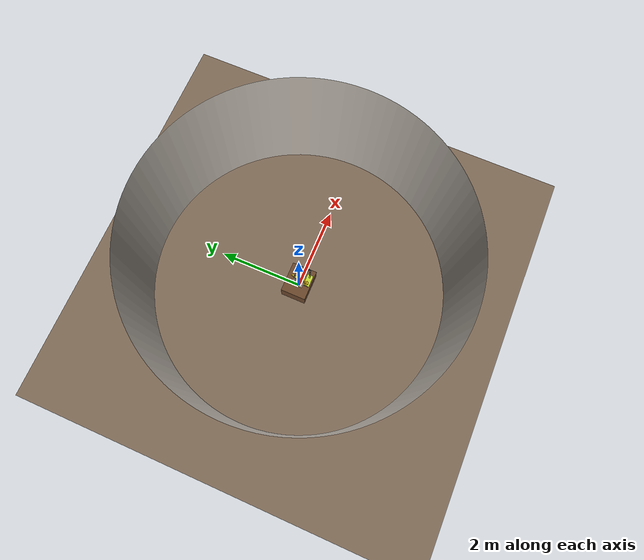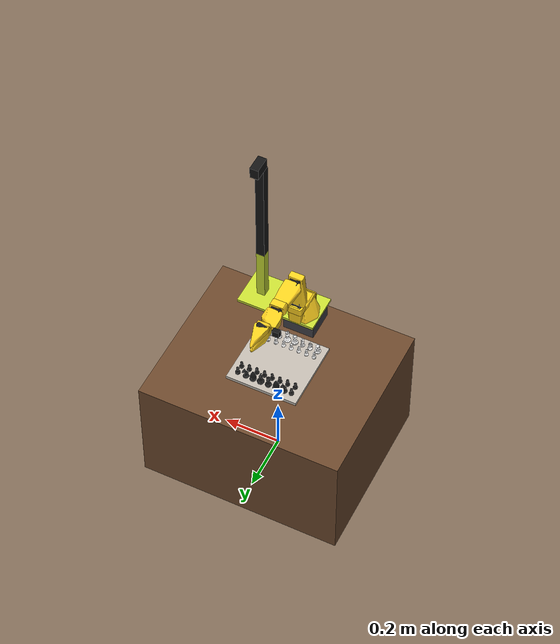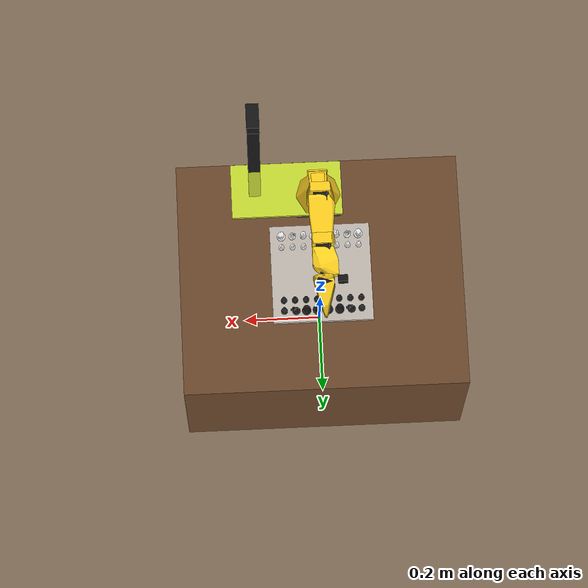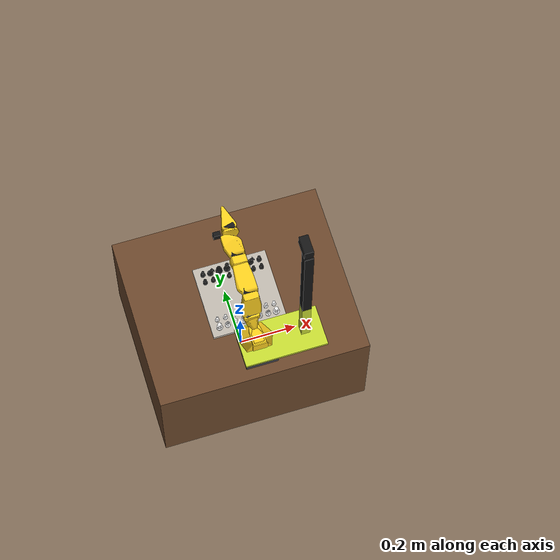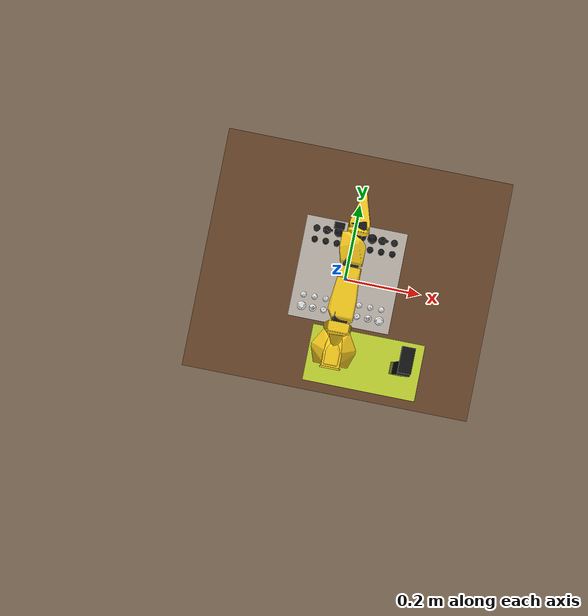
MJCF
<mujoco model="chess_so101">
  <compiler angle="radian" meshdir="/home/kamil/chess_so101/chess_sim/assets/" texturedir="/home/kamil/chess_so101/chess_sim/assets/"/>

  <option impratio="10" cone="elliptic"/>

  <size nkey="1"/>

  <statistic extent="1"/>

  <visual>
    <global offwidth="1280" offheight="960"/>
    <map znear="0.004"/>
  </visual>

  <default>
    <default class="so101:main">
      <default class="so101:so101_new_calib">
        <joint armature="0.005" damping="1" frictionloss="0.1"/>
        <general biastype="affine" gainprm="50" biasprm="0 -50"/>
        <default class="so101:visual">
          <geom type="mesh" contype="0" conaffinity="0" group="2"/>
        </default>
        <default class="so101:collision">
          <geom group="3"/>
        </default>
      </default>
      <default class="so101:sts3215">
        <joint armature="0.028" damping="0.6" frictionloss="0.052"/>
        <geom contype="0" conaffinity="0"/>
        <general forcerange="-2.94 2.94" biastype="affine" gainprm="998.22" biasprm="0 -998.22 -2.731"/>
      </default>
      <default class="so101:backlash">
        <joint range="-0.00872665 0.00872665" armature="0.01" damping="0.01" limited="true"/>
      </default>
    </default>
  </default>

  <asset>
    <texture type="2d" colorspace="linear" name="backdrop_tex" file="scene/pano_image.png"/>
    <texture type="2d" colorspace="linear" name="board_tex" file="scene/board_texture.png"/>
    <texture type="2d" colorspace="linear" name="tex_white_pawn" file="pieces/white_pawn/material_0.png"/>
    <texture type="2d" colorspace="linear" name="tex_white_rook" file="pieces/white_rook/material_0.png"/>
    <texture type="2d" colorspace="linear" name="tex_white_knight" file="pieces/white_knight/material_0.png"/>
    <texture type="2d" colorspace="linear" name="tex_white_bishop" file="pieces/white_bishop/material_0.png"/>
    <texture type="2d" colorspace="linear" name="tex_white_queen" file="pieces/white_queen/material_0.png"/>
    <texture type="2d" colorspace="linear" name="tex_white_king" file="pieces/white_king/material_0.png"/>
    <texture type="2d" colorspace="linear" name="tex_black_pawn" file="pieces/black_pawn/material_0.png"/>
    <texture type="2d" colorspace="linear" name="tex_black_rook" file="pieces/black_rook/material_0.png"/>
    <texture type="2d" colorspace="linear" name="tex_black_knight" file="pieces/black_knight/material_0.png"/>
    <texture type="2d" colorspace="linear" name="tex_black_bishop" file="pieces/black_bishop/material_0.png"/>
    <texture type="2d" colorspace="linear" name="tex_black_queen" file="pieces/black_queen/material_0.png"/>
    <texture type="2d" colorspace="linear" name="tex_black_king" file="pieces/black_king/material_0.png"/>
    <material name="backdrop_mat" texture="backdrop_tex" emission="0.55"/>
    <material name="board_mat" texture="board_tex" reflectance="0.04"/>
    <material name="mat_white_pawn" texture="tex_white_pawn" reflectance="0.2"/>
    <material name="mat_white_rook" texture="tex_white_rook" reflectance="0.2"/>
    <material name="mat_white_knight" texture="tex_white_knight" reflectance="0.2"/>
    <material name="mat_white_bishop" texture="tex_white_bishop" reflectance="0.2"/>
    <material name="mat_white_queen" texture="tex_white_queen" reflectance="0.2"/>
    <material name="mat_white_king" texture="tex_white_king" reflectance="0.2"/>
    <material name="mat_black_pawn" texture="tex_black_pawn" reflectance="0.2"/>
    <material name="mat_black_rook" texture="tex_black_rook" reflectance="0.2"/>
    <material name="mat_black_knight" texture="tex_black_knight" reflectance="0.2"/>
    <material name="mat_black_bishop" texture="tex_black_bishop" reflectance="0.2"/>
    <material name="mat_black_queen" texture="tex_black_queen" reflectance="0.2"/>
    <material name="mat_black_king" texture="tex_black_king" reflectance="0.2"/>
    <material name="so101:base_motor_holder_so101_v1_material" rgba="1 0.82 0.12 1"/>
    <material name="so101:base_so101_v2_material" rgba="1 0.82 0.12 1"/>
    <material name="so101:sts3215_03a_v1_material" rgba="0.1 0.1 0.1 1"/>
    <material name="so101:waveshare_mounting_plate_so101_v2_material" rgba="1 0.82 0.12 1"/>
    <material name="so101:motor_holder_so101_base_v1_material" rgba="1 0.82 0.12 1"/>
    <material name="so101:rotation_pitch_so101_v1_material" rgba="1 0.82 0.12 1"/>
    <material name="so101:upper_arm_so101_v1_material" rgba="1 0.82 0.12 1"/>
    <material name="so101:under_arm_so101_v1_material" rgba="1 0.82 0.12 1"/>
    <material name="so101:motor_holder_so101_wrist_v1_material" rgba="1 0.82 0.12 1"/>
    <material name="so101:sts3215_03a_no_horn_v1_material" rgba="0.1 0.1 0.1 1"/>
    <material name="so101:wrist_roll_pitch_so101_v2_material" rgba="1 0.82 0.12 1"/>
    <material name="so101:wrist_roll_follower_so101_v1_material" rgba="1 0.82 0.12 1"/>
    <material name="so101:moving_jaw_so101_v1_material" rgba="1 0.82 0.12 1"/>
    <mesh name="backdrop" file="scene/pano_cylinder.obj"/>
    <mesh name="mesh_white_pawn" file="pieces/white_pawn/white_pawn.obj" scale="0.34 0.34 0.34"/>
    <mesh name="mesh_white_rook" file="pieces/white_rook/white_rook.obj" scale="0.467692 0.467692 0.467692"/>
    <mesh name="mesh_white_knight" file="pieces/white_knight/white_knight.obj" scale="0.373333 0.373333 0.373333"/>
    <mesh name="mesh_white_bishop" file="pieces/white_bishop/white_bishop.obj" scale="0.490667 0.490667 0.490667"/>
    <mesh name="mesh_white_queen" file="pieces/white_queen/white_queen.obj" scale="0.489412 0.489412 0.489412"/>
    <mesh name="mesh_white_king" file="pieces/white_king/white_king.obj" scale="0.488421 0.488421 0.488421"/>
    <mesh name="mesh_black_pawn" file="pieces/black_pawn/black_pawn.obj" scale="0.453333 0.453333 0.453333"/>
    <mesh name="mesh_black_rook" file="pieces/black_rook/black_rook.obj" scale="0.43428 0.43428 0.43428"/>
    <mesh name="mesh_black_knight" file="pieces/black_knight/black_knight.obj" scale="0.399643 0.399643 0.399643"/>
    <mesh name="mesh_black_bishop" file="pieces/black_bishop/black_bishop.obj" scale="0.490667 0.490667 0.490667"/>
    <mesh name="mesh_black_queen" file="pieces/black_queen/black_queen.obj" scale="0.489412 0.489412 0.489412"/>
    <mesh name="mesh_black_king" file="pieces/black_king/black_king.obj" scale="0.445674 0.445674 0.445674"/>
    <mesh name="so101:waveshare_mounting_plate_so101_v2" file="so101/waveshare_mounting_plate_so101_v2.stl"/>
    <mesh name="so101:sts3215_03a_v1" file="so101/sts3215_03a_v1.stl"/>
    <mesh name="so101:motor_holder_so101_base_v1" file="so101/motor_holder_so101_base_v1.stl"/>
    <mesh name="so101:wrist_roll_follower_so101_v1" file="so101/wrist_roll_follower_so101_v1.stl"/>
    <mesh name="so101:moving_jaw_so101_v1" file="so101/moving_jaw_so101_v1.stl"/>
    <mesh name="so101:base_motor_holder_so101_v1" file="so101/base_motor_holder_so101_v1.stl"/>
    <mesh name="so101:upper_arm_so101_v1" file="so101/upper_arm_so101_v1.stl"/>
    <mesh name="so101:wrist_roll_pitch_so101_v2" file="so101/wrist_roll_pitch_so101_v2.stl"/>
    <mesh name="so101:under_arm_so101_v1" file="so101/under_arm_so101_v1.stl"/>
    <mesh name="so101:rotation_pitch_so101_v1" file="so101/rotation_pitch_so101_v1.stl"/>
    <mesh name="so101:motor_holder_so101_wrist_v1" file="so101/motor_holder_so101_wrist_v1.stl"/>
    <mesh name="so101:sts3215_03a_no_horn_v1" file="so101/sts3215_03a_no_horn_v1.stl"/>
    <mesh name="so101:base_so101_v2" file="so101/base_so101_v2.stl"/>
  </asset>

  <worldbody>
    <geom size="6 6 0.1" type="plane" rgba="0.5 0.42 0.34 1"/>
    <geom type="mesh" contype="0" conaffinity="0" group="1" material="backdrop_mat" mesh="backdrop"/>
    <geom name="table" size="0.36 0.3 0.215" pos="0 0 0.215" type="box" priority="1" solimp="0.999 0.9999" rgba="0.42 0.28 0.17 1"/>
    <geom size="0.055 0.055 0.03" pos="0 -0.207 0.46" type="box" rgba="0.25 0.25 0.28 1"/>
    <geom name="mast_plate" size="0.14 0.07 0.005" pos="0.08 -0.207 0.495" type="box" rgba="0.78 0.86 0.2 1"/>
    <geom name="mast_lower" size="0.015 0.015 0.1" pos="0.16 -0.207 0.6" type="box" rgba="0.78 0.86 0.2 1"/>
    <geom name="mast_upper" size="0.015 0.015 0.2" pos="0.16 -0.207 0.9" type="box" rgba="0.08 0.08 0.08 1"/>
    <geom name="mast_camera" size="0.015 0.03 0.02" pos="0.16 -0.187 1.12" type="box" contype="0" conaffinity="0" rgba="0.08 0.08 0.08 1"/>
    <camera name="external" quat="0.756283 0.423207 -0.243643 -0.435397" pos="-0.31 -0.16 0.702" fovy="42"/>
    <camera name="top" quat="0.987569 0.106489 0.114949 -0.0123948" pos="0.16 -0.152 1.12" fovy="24"/>
    <light name="key" pos="0.662814 -0.662814 2.60938" dir="-0.276172 0.276172 -0.920575" diffuse="0.85 0.82 0.75"/>
    <light name="fill" castshadow="false" pos="-1.2 1 1.8" dir="0.421076 -0.336861 -0.842152" diffuse="0.35 0.36 0.4"/>
    <body name="board" pos="0 0 0.436" mocap="true">
      <geom name="board" size="0.127 0.127 0.006" type="box" priority="1" solimp="0.999 0.9999" material="board_mat"/>
    </body>
    <body name="white_pawn1" pos="0.0979897 -0.069999 0.455597" quat="1 6.0272e-06 4.17635e-05 0.000115634">
      <joint name="white_pawn1_joint" type="free"/>
      <geom type="mesh" contype="0" conaffinity="0" density="0" material="mat_white_pawn" mesh="mesh_white_pawn"/>
      <geom size="0.00655407 0.0034" pos="1.054e-05 -2.72e-06 -0.010198" type="cylinder" rgba="1 1 1 0" density="600"/>
      <geom size="0.00331241 0.00272" pos="1.054e-05 -2.72e-06 -0.00407796" type="cylinder" rgba="1 1 1 0" density="600"/>
      <geom size="0.00268728 0.00272" pos="1.054e-05 -2.72e-06 0.00136204" type="cylinder" rgba="1 1 1 0" density="600"/>
      <geom size="0.0041608 0.00476" pos="1.054e-05 -2.72e-06 0.00884204" type="cylinder" rgba="1 1 1 0" density="600"/>
    </body>
    <body name="white_pawn2" pos="0.0699901 -0.0699998 0.455597" quat="1 4.02693e-05 1.38624e-07 -7.1423e-06">
      <joint name="white_pawn2_joint" type="free"/>
      <geom type="mesh" contype="0" conaffinity="0" density="0" material="mat_white_pawn" mesh="mesh_white_pawn"/>
      <geom size="0.00655407 0.0034" pos="1.054e-05 -2.72e-06 -0.010198" type="cylinder" rgba="1 1 1 0" density="600"/>
      <geom size="0.00331241 0.00272" pos="1.054e-05 -2.72e-06 -0.00407796" type="cylinder" rgba="1 1 1 0" density="600"/>
      <geom size="0.00268728 0.00272" pos="1.054e-05 -2.72e-06 0.00136204" type="cylinder" rgba="1 1 1 0" density="600"/>
      <geom size="0.0041608 0.00476" pos="1.054e-05 -2.72e-06 0.00884204" type="cylinder" rgba="1 1 1 0" density="600"/>
    </body>
    <body name="white_pawn3" pos="0.0419902 -0.0699985 0.455597" quat="1 4.61688e-05 1.05559e-06 -4.47535e-06">
      <joint name="white_pawn3_joint" type="free"/>
      <geom type="mesh" contype="0" conaffinity="0" density="0" material="mat_white_pawn" mesh="mesh_white_pawn"/>
      <geom size="0.00655407 0.0034" pos="1.054e-05 -2.72e-06 -0.010198" type="cylinder" rgba="1 1 1 0" density="600"/>
      <geom size="0.00331241 0.00272" pos="1.054e-05 -2.72e-06 -0.00407796" type="cylinder" rgba="1 1 1 0" density="600"/>
      <geom size="0.00268728 0.00272" pos="1.054e-05 -2.72e-06 0.00136204" type="cylinder" rgba="1 1 1 0" density="600"/>
      <geom size="0.0041608 0.00476" pos="1.054e-05 -2.72e-06 0.00884204" type="cylinder" rgba="1 1 1 0" density="600"/>
    </body>
    <body name="white_pawn4" pos="0.0139904 -0.0699986 0.455597" quat="1 2.13489e-05 -3.6e-05 -0.000159143">
      <joint name="white_pawn4_joint" type="free"/>
      <geom type="mesh" contype="0" conaffinity="0" density="0" material="mat_white_pawn" mesh="mesh_white_pawn"/>
      <geom size="0.00655407 0.0034" pos="1.054e-05 -2.72e-06 -0.010198" type="cylinder" rgba="1 1 1 0" density="600"/>
      <geom size="0.00331241 0.00272" pos="1.054e-05 -2.72e-06 -0.00407796" type="cylinder" rgba="1 1 1 0" density="600"/>
      <geom size="0.00268728 0.00272" pos="1.054e-05 -2.72e-06 0.00136204" type="cylinder" rgba="1 1 1 0" density="600"/>
      <geom size="0.0041608 0.00476" pos="1.054e-05 -2.72e-06 0.00884204" type="cylinder" rgba="1 1 1 0" density="600"/>
    </body>
    <body name="white_pawn5" pos="-0.0140083 -0.07 0.455597" quat="1 4.06485e-05 1.22554e-05 0.000192693">
      <joint name="white_pawn5_joint" type="free"/>
      <geom type="mesh" contype="0" conaffinity="0" density="0" material="mat_white_pawn" mesh="mesh_white_pawn"/>
      <geom size="0.00655407 0.0034" pos="1.054e-05 -2.72e-06 -0.010198" type="cylinder" rgba="1 1 1 0" density="600"/>
      <geom size="0.00331241 0.00272" pos="1.054e-05 -2.72e-06 -0.00407796" type="cylinder" rgba="1 1 1 0" density="600"/>
      <geom size="0.00268728 0.00272" pos="1.054e-05 -2.72e-06 0.00136204" type="cylinder" rgba="1 1 1 0" density="600"/>
      <geom size="0.0041608 0.00476" pos="1.054e-05 -2.72e-06 0.00884204" type="cylinder" rgba="1 1 1 0" density="600"/>
    </body>
    <body name="white_pawn6" pos="-0.0420099 -0.069998 0.455597" quat="1 4.44292e-05 5.53182e-06 4.42612e-05">
      <joint name="white_pawn6_joint" type="free"/>
      <geom type="mesh" contype="0" conaffinity="0" density="0" material="mat_white_pawn" mesh="mesh_white_pawn"/>
      <geom size="0.00655407 0.0034" pos="1.054e-05 -2.72e-06 -0.010198" type="cylinder" rgba="1 1 1 0" density="600"/>
      <geom size="0.00331241 0.00272" pos="1.054e-05 -2.72e-06 -0.00407796" type="cylinder" rgba="1 1 1 0" density="600"/>
      <geom size="0.00268728 0.00272" pos="1.054e-05 -2.72e-06 0.00136204" type="cylinder" rgba="1 1 1 0" density="600"/>
      <geom size="0.0041608 0.00476" pos="1.054e-05 -2.72e-06 0.00884204" type="cylinder" rgba="1 1 1 0" density="600"/>
    </body>
    <body name="white_pawn7" pos="-0.0700111 -0.0699991 0.455597" quat="1 2.95983e-05 -2.84155e-05 4.29816e-05">
      <joint name="white_pawn7_joint" type="free"/>
      <geom type="mesh" contype="0" conaffinity="0" density="0" material="mat_white_pawn" mesh="mesh_white_pawn"/>
      <geom size="0.00655407 0.0034" pos="1.054e-05 -2.72e-06 -0.010198" type="cylinder" rgba="1 1 1 0" density="600"/>
      <geom size="0.00331241 0.00272" pos="1.054e-05 -2.72e-06 -0.00407796" type="cylinder" rgba="1 1 1 0" density="600"/>
      <geom size="0.00268728 0.00272" pos="1.054e-05 -2.72e-06 0.00136204" type="cylinder" rgba="1 1 1 0" density="600"/>
      <geom size="0.0041608 0.00476" pos="1.054e-05 -2.72e-06 0.00884204" type="cylinder" rgba="1 1 1 0" density="600"/>
    </body>
    <body name="white_pawn8" pos="-0.0980117 -0.0699987 0.455597" quat="1 1.35788e-05 -3.98804e-05 0.000247196">
      <joint name="white_pawn8_joint" type="free"/>
      <geom type="mesh" contype="0" conaffinity="0" density="0" material="mat_white_pawn" mesh="mesh_white_pawn"/>
      <geom size="0.00655407 0.0034" pos="1.054e-05 -2.72e-06 -0.010198" type="cylinder" rgba="1 1 1 0" density="600"/>
      <geom size="0.00331241 0.00272" pos="1.054e-05 -2.72e-06 -0.00407796" type="cylinder" rgba="1 1 1 0" density="600"/>
      <geom size="0.00268728 0.00272" pos="1.054e-05 -2.72e-06 0.00136204" type="cylinder" rgba="1 1 1 0" density="600"/>
      <geom size="0.0041608 0.00476" pos="1.054e-05 -2.72e-06 0.00884204" type="cylinder" rgba="1 1 1 0" density="600"/>
    </body>
    <body name="white_rook1" pos="0.0979897 -0.0980045 0.457197" quat="1 1.97907e-05 1.42414e-05 0.000152861">
      <joint name="white_rook1_joint" type="free"/>
      <geom type="mesh" contype="0" conaffinity="0" density="0" material="mat_white_rook" mesh="mesh_white_rook"/>
      <geom size="0.0109506 0.0038" pos="1.14585e-05 4.91077e-06 -0.0113981" type="cylinder" rgba="1 1 1 0" density="600"/>
      <geom size="0.00597772 0.00304" pos="1.14585e-05 4.91077e-06 -0.00455813" type="cylinder" rgba="1 1 1 0" density="600"/>
      <geom size="0.00503067 0.00304" pos="1.14585e-05 4.91077e-06 0.00152187" type="cylinder" rgba="1 1 1 0" density="600"/>
      <geom size="0.0050328 0.00532" pos="1.14585e-05 4.91077e-06 0.00988187" type="cylinder" rgba="1 1 1 0" density="600"/>
    </body>
    <body name="white_rook2" pos="-0.0980138 -0.098005 0.457197" quat="1 1.0582e-07 -2.47778e-05 -0.000103789">
      <joint name="white_rook2_joint" type="free"/>
      <geom type="mesh" contype="0" conaffinity="0" density="0" material="mat_white_rook" mesh="mesh_white_rook"/>
      <geom size="0.0109506 0.0038" pos="1.14585e-05 4.91077e-06 -0.0113981" type="cylinder" rgba="1 1 1 0" density="600"/>
      <geom size="0.00597772 0.00304" pos="1.14585e-05 4.91077e-06 -0.00455813" type="cylinder" rgba="1 1 1 0" density="600"/>
      <geom size="0.00503067 0.00304" pos="1.14585e-05 4.91077e-06 0.00152187" type="cylinder" rgba="1 1 1 0" density="600"/>
      <geom size="0.0050328 0.00532" pos="1.14585e-05 4.91077e-06 0.00988187" type="cylinder" rgba="1 1 1 0" density="600"/>
    </body>
    <body name="white_knight1" pos="0.0699975 -0.0980019 0.458793" quat="1 2.73677e-05 1.32339e-05 3.70885e-06">
      <joint name="white_knight1_joint" type="free"/>
      <geom type="mesh" contype="0" conaffinity="0" density="0" material="mat_white_knight" mesh="mesh_white_knight"/>
      <geom size="0.00908181 0.0042" pos="1.86667e-06 -7.46667e-07 -0.012594" type="cylinder" rgba="1 1 1 0" density="600"/>
      <geom size="0.00749604 0.00336" pos="1.86667e-06 -7.46667e-07 -0.00503403" type="cylinder" rgba="1 1 1 0" density="600"/>
      <geom size="0.00880836 0.00336" pos="1.86667e-06 -7.46667e-07 0.00168597" type="cylinder" rgba="1 1 1 0" density="600"/>
      <geom size="0.00656312 0.00588" pos="1.86667e-06 -7.46667e-07 0.010926" type="cylinder" rgba="1 1 1 0" density="600"/>
    </body>
    <body name="white_knight2" pos="-0.070002 -0.0980005 0.458793" quat="1 3.07533e-05 -4.1238e-06 -8.96461e-05">
      <joint name="white_knight2_joint" type="free"/>
      <geom type="mesh" contype="0" conaffinity="0" density="0" material="mat_white_knight" mesh="mesh_white_knight"/>
      <geom size="0.00908181 0.0042" pos="1.86667e-06 -7.46667e-07 -0.012594" type="cylinder" rgba="1 1 1 0" density="600"/>
      <geom size="0.00749604 0.00336" pos="1.86667e-06 -7.46667e-07 -0.00503403" type="cylinder" rgba="1 1 1 0" density="600"/>
      <geom size="0.00880836 0.00336" pos="1.86667e-06 -7.46667e-07 0.00168597" type="cylinder" rgba="1 1 1 0" density="600"/>
      <geom size="0.00656312 0.00588" pos="1.86667e-06 -7.46667e-07 0.010926" type="cylinder" rgba="1 1 1 0" density="600"/>
    </body>
    <body name="white_bishop1" pos="0.0420013 -0.0980056 0.460425" quat="1 4.54902e-05 4.11243e-07 -0.00011906">
      <joint name="white_bishop1_joint" type="free"/>
      <geom type="mesh" contype="0" conaffinity="0" density="0" material="mat_white_bishop" mesh="mesh_white_bishop"/>
      <geom size="0.00672351 0.0046" pos="1.472e-06 5.39733e-06 -0.0138255" type="cylinder" rgba="1 1 1 0" density="600"/>
      <geom size="0.00348178 0.00368" pos="1.472e-06 5.39733e-06 -0.00554551" type="cylinder" rgba="1 1 1 0" density="600"/>
      <geom size="0.00604877 0.00368" pos="1.472e-06 5.39733e-06 0.00181449" type="cylinder" rgba="1 1 1 0" density="600"/>
      <geom size="0.00490283 0.00644" pos="1.472e-06 5.39733e-06 0.0119345" type="cylinder" rgba="1 1 1 0" density="600"/>
    </body>
    <body name="white_bishop2" pos="-0.0420015 -0.098006 0.460425" quat="1 4.17647e-05 5.95879e-06 9.90555e-05">
      <joint name="white_bishop2_joint" type="free"/>
      <geom type="mesh" contype="0" conaffinity="0" density="0" material="mat_white_bishop" mesh="mesh_white_bishop"/>
      <geom size="0.00672351 0.0046" pos="1.472e-06 5.39733e-06 -0.0138255" type="cylinder" rgba="1 1 1 0" density="600"/>
      <geom size="0.00348178 0.00368" pos="1.472e-06 5.39733e-06 -0.00554551" type="cylinder" rgba="1 1 1 0" density="600"/>
      <geom size="0.00604877 0.00368" pos="1.472e-06 5.39733e-06 0.00181449" type="cylinder" rgba="1 1 1 0" density="600"/>
      <geom size="0.00490283 0.00644" pos="1.472e-06 5.39733e-06 0.0119345" type="cylinder" rgba="1 1 1 0" density="600"/>
    </body>
    <body name="white_queen1" pos="-0.0139955 -0.0980016 0.46281" quat="1 2.45652e-05 7.65559e-06 -2.07151e-05">
      <joint name="white_queen1_joint" type="free"/>
      <geom type="mesh" contype="0" conaffinity="0" density="0" material="mat_white_queen" mesh="mesh_white_queen"/>
      <geom size="0.0110518 0.0052" pos="-2.93647e-06 4.89412e-07 -0.0156113" type="cylinder" rgba="1 1 1 0" density="600"/>
      <geom size="0.00486131 0.00416" pos="-2.93647e-06 4.89412e-07 -0.00625126" type="cylinder" rgba="1 1 1 0" density="600"/>
      <geom size="0.00385311 0.00416" pos="-2.93647e-06 4.89412e-07 0.00206874" type="cylinder" rgba="1 1 1 0" density="600"/>
      <geom size="0.00635272 0.00728" pos="-2.93647e-06 4.89412e-07 0.0135087" type="cylinder" rgba="1 1 1 0" density="600"/>
    </body>
    <body name="white_king1" pos="0.0139985 -0.0980002 0.465204" quat="1 3.58546e-05 4.94169e-08 -0.000171113">
      <joint name="white_king1_joint" type="free"/>
      <geom type="mesh" contype="0" conaffinity="0" density="0" material="mat_white_king" mesh="mesh_white_king"/>
      <geom size="0.00866714 0.0058" pos="9.76842e-07 9.76842e-07 -0.0174049" type="cylinder" rgba="1 1 1 0" density="600"/>
      <geom size="0.00494222 0.00464" pos="9.76842e-07 9.76842e-07 -0.00696488" type="cylinder" rgba="1 1 1 0" density="600"/>
      <geom size="0.00385157 0.00464" pos="9.76842e-07 9.76842e-07 0.00231512" type="cylinder" rgba="1 1 1 0" density="600"/>
      <geom size="0.00631988 0.00812" pos="9.76842e-07 9.76842e-07 0.0150751" type="cylinder" rgba="1 1 1 0" density="600"/>
    </body>
    <body name="black_pawn1" pos="0.0979973 0.0700001 0.455606" quat="1 -1.33651e-05 3.0034e-05 7.73162e-05">
      <joint name="black_pawn1_joint" type="free"/>
      <geom type="mesh" contype="0" conaffinity="0" density="0" material="mat_black_pawn" mesh="mesh_black_pawn"/>
      <geom size="0.0083453 0.0034" pos="2.04e-06 -4.53333e-07 -0.0102068" type="cylinder" rgba="1 1 1 0" density="600"/>
      <geom size="0.0045886 0.00272" pos="2.04e-06 -4.53333e-07 -0.0040868" type="cylinder" rgba="1 1 1 0" density="600"/>
      <geom size="0.00374601 0.00272" pos="2.04e-06 -4.53333e-07 0.0013532" type="cylinder" rgba="1 1 1 0" density="600"/>
      <geom size="0.00494158 0.00476" pos="2.04e-06 -4.53333e-07 0.0088332" type="cylinder" rgba="1 1 1 0" density="600"/>
    </body>
    <body name="black_pawn2" pos="0.0699968 0.0700014 0.455606" quat="1 -1.94014e-05 2.46525e-05 -5.30308e-05">
      <joint name="black_pawn2_joint" type="free"/>
      <geom type="mesh" contype="0" conaffinity="0" density="0" material="mat_black_pawn" mesh="mesh_black_pawn"/>
      <geom size="0.0083453 0.0034" pos="2.04e-06 -4.53333e-07 -0.0102068" type="cylinder" rgba="1 1 1 0" density="600"/>
      <geom size="0.0045886 0.00272" pos="2.04e-06 -4.53333e-07 -0.0040868" type="cylinder" rgba="1 1 1 0" density="600"/>
      <geom size="0.00374601 0.00272" pos="2.04e-06 -4.53333e-07 0.0013532" type="cylinder" rgba="1 1 1 0" density="600"/>
      <geom size="0.00494158 0.00476" pos="2.04e-06 -4.53333e-07 0.0088332" type="cylinder" rgba="1 1 1 0" density="600"/>
    </body>
    <body name="black_pawn3" pos="0.0419958 0.0700007 0.455606" quat="1 -3.51887e-05 -4.44824e-06 -0.000206715">
      <joint name="black_pawn3_joint" type="free"/>
      <geom type="mesh" contype="0" conaffinity="0" density="0" material="mat_black_pawn" mesh="mesh_black_pawn"/>
      <geom size="0.0083453 0.0034" pos="2.04e-06 -4.53333e-07 -0.0102068" type="cylinder" rgba="1 1 1 0" density="600"/>
      <geom size="0.0045886 0.00272" pos="2.04e-06 -4.53333e-07 -0.0040868" type="cylinder" rgba="1 1 1 0" density="600"/>
      <geom size="0.00374601 0.00272" pos="2.04e-06 -4.53333e-07 0.0013532" type="cylinder" rgba="1 1 1 0" density="600"/>
      <geom size="0.00494158 0.00476" pos="2.04e-06 -4.53333e-07 0.0088332" type="cylinder" rgba="1 1 1 0" density="600"/>
    </body>
    <body name="black_pawn4" pos="0.0139967 0.0700005 0.455606" quat="1 -3.23457e-05 -9.5284e-06 0.000290123">
      <joint name="black_pawn4_joint" type="free"/>
      <geom type="mesh" contype="0" conaffinity="0" density="0" material="mat_black_pawn" mesh="mesh_black_pawn"/>
      <geom size="0.0083453 0.0034" pos="2.04e-06 -4.53333e-07 -0.0102068" type="cylinder" rgba="1 1 1 0" density="600"/>
      <geom size="0.0045886 0.00272" pos="2.04e-06 -4.53333e-07 -0.0040868" type="cylinder" rgba="1 1 1 0" density="600"/>
      <geom size="0.00374601 0.00272" pos="2.04e-06 -4.53333e-07 0.0013532" type="cylinder" rgba="1 1 1 0" density="600"/>
      <geom size="0.00494158 0.00476" pos="2.04e-06 -4.53333e-07 0.0088332" type="cylinder" rgba="1 1 1 0" density="600"/>
    </body>
    <body name="black_pawn5" pos="-0.0140003 0.0700025 0.455606" quat="1 -1.45959e-05 2.87767e-05 3.76503e-05">
      <joint name="black_pawn5_joint" type="free"/>
      <geom type="mesh" contype="0" conaffinity="0" density="0" material="mat_black_pawn" mesh="mesh_black_pawn"/>
      <geom size="0.0083453 0.0034" pos="2.04e-06 -4.53333e-07 -0.0102068" type="cylinder" rgba="1 1 1 0" density="600"/>
      <geom size="0.0045886 0.00272" pos="2.04e-06 -4.53333e-07 -0.0040868" type="cylinder" rgba="1 1 1 0" density="600"/>
      <geom size="0.00374601 0.00272" pos="2.04e-06 -4.53333e-07 0.0013532" type="cylinder" rgba="1 1 1 0" density="600"/>
      <geom size="0.00494158 0.00476" pos="2.04e-06 -4.53333e-07 0.0088332" type="cylinder" rgba="1 1 1 0" density="600"/>
    </body>
    <body name="black_pawn6" pos="-0.0420038 0.0700013 0.455606" quat="1 -3.69622e-05 -8.64392e-07 7.24103e-05">
      <joint name="black_pawn6_joint" type="free"/>
      <geom type="mesh" contype="0" conaffinity="0" density="0" material="mat_black_pawn" mesh="mesh_black_pawn"/>
      <geom size="0.0083453 0.0034" pos="2.04e-06 -4.53333e-07 -0.0102068" type="cylinder" rgba="1 1 1 0" density="600"/>
      <geom size="0.0045886 0.00272" pos="2.04e-06 -4.53333e-07 -0.0040868" type="cylinder" rgba="1 1 1 0" density="600"/>
      <geom size="0.00374601 0.00272" pos="2.04e-06 -4.53333e-07 0.0013532" type="cylinder" rgba="1 1 1 0" density="600"/>
      <geom size="0.00494158 0.00476" pos="2.04e-06 -4.53333e-07 0.0088332" type="cylinder" rgba="1 1 1 0" density="600"/>
    </body>
    <body name="black_pawn7" pos="-0.0700032 0.0700017 0.455606" quat="1 -2.11322e-05 -2.28645e-05 -0.000110186">
      <joint name="black_pawn7_joint" type="free"/>
      <geom type="mesh" contype="0" conaffinity="0" density="0" material="mat_black_pawn" mesh="mesh_black_pawn"/>
      <geom size="0.0083453 0.0034" pos="2.04e-06 -4.53333e-07 -0.0102068" type="cylinder" rgba="1 1 1 0" density="600"/>
      <geom size="0.0045886 0.00272" pos="2.04e-06 -4.53333e-07 -0.0040868" type="cylinder" rgba="1 1 1 0" density="600"/>
      <geom size="0.00374601 0.00272" pos="2.04e-06 -4.53333e-07 0.0013532" type="cylinder" rgba="1 1 1 0" density="600"/>
      <geom size="0.00494158 0.00476" pos="2.04e-06 -4.53333e-07 0.0088332" type="cylinder" rgba="1 1 1 0" density="600"/>
    </body>
    <body name="black_pawn8" pos="-0.098002 0.0700032 0.455606" quat="1 -4.02242e-06 -3.36994e-05 0.000167771">
      <joint name="black_pawn8_joint" type="free"/>
      <geom type="mesh" contype="0" conaffinity="0" density="0" material="mat_black_pawn" mesh="mesh_black_pawn"/>
      <geom size="0.0083453 0.0034" pos="2.04e-06 -4.53333e-07 -0.0102068" type="cylinder" rgba="1 1 1 0" density="600"/>
      <geom size="0.0045886 0.00272" pos="2.04e-06 -4.53333e-07 -0.0040868" type="cylinder" rgba="1 1 1 0" density="600"/>
      <geom size="0.00374601 0.00272" pos="2.04e-06 -4.53333e-07 0.0013532" type="cylinder" rgba="1 1 1 0" density="600"/>
      <geom size="0.00494158 0.00476" pos="2.04e-06 -4.53333e-07 0.0088332" type="cylinder" rgba="1 1 1 0" density="600"/>
    </body>
    <body name="black_rook1" pos="0.0980037 0.0980134 0.457219" quat="1 -3.62353e-07 3.52964e-05 0.000159986">
      <joint name="black_rook1_joint" type="free"/>
      <geom type="mesh" contype="0" conaffinity="0" density="0" material="mat_black_rook" mesh="mesh_black_rook"/>
      <geom size="0.00791006 0.0038" pos="-1.51998e-06 -1.60683e-05 -0.0114202" type="cylinder" rgba="1 1 1 0" density="600"/>
      <geom size="0.00413411 0.00304" pos="-1.51998e-06 -1.60683e-05 -0.00458019" type="cylinder" rgba="1 1 1 0" density="600"/>
      <geom size="0.00331872 0.00304" pos="-1.51998e-06 -1.60683e-05 0.00149981" type="cylinder" rgba="1 1 1 0" density="600"/>
      <geom size="0.00429197 0.00532" pos="-1.51998e-06 -1.60683e-05 0.00985981" type="cylinder" rgba="1 1 1 0" density="600"/>
    </body>
    <body name="black_rook2" pos="-0.0980002 0.0980159 0.457219" quat="1 -2.55268e-05 -2.10582e-05 -8.12067e-05">
      <joint name="black_rook2_joint" type="free"/>
      <geom type="mesh" contype="0" conaffinity="0" density="0" material="mat_black_rook" mesh="mesh_black_rook"/>
      <geom size="0.00791006 0.0038" pos="-1.51998e-06 -1.60683e-05 -0.0114202" type="cylinder" rgba="1 1 1 0" density="600"/>
      <geom size="0.00413411 0.00304" pos="-1.51998e-06 -1.60683e-05 -0.00458019" type="cylinder" rgba="1 1 1 0" density="600"/>
      <geom size="0.00331872 0.00304" pos="-1.51998e-06 -1.60683e-05 0.00149981" type="cylinder" rgba="1 1 1 0" density="600"/>
      <geom size="0.00429197 0.00532" pos="-1.51998e-06 -1.60683e-05 0.00985981" type="cylinder" rgba="1 1 1 0" density="600"/>
    </body>
    <body name="black_knight1" pos="0.0699652 0.0979971 0.457982" quat="1 -2.42725e-05 4.37423e-06 4.15651e-05">
      <joint name="black_knight1_joint" type="free"/>
      <geom type="mesh" contype="0" conaffinity="0" density="0" material="mat_black_knight" mesh="mesh_black_knight"/>
      <geom size="0.0115649 0.00399643" pos="3.21713e-05 4.79572e-06 -0.0119865" type="cylinder" rgba="1 1 1 0" density="600"/>
      <geom size="0.00787805 0.00319715" pos="3.21713e-05 4.79572e-06 -0.00479292" type="cylinder" rgba="1 1 1 0" density="600"/>
      <geom size="0.0115939 0.00319715" pos="3.21713e-05 4.79572e-06 0.00160137" type="cylinder" rgba="1 1 1 0" density="600"/>
      <geom size="0.00925097 0.005595" pos="3.21713e-05 4.79572e-06 0.0103935" type="cylinder" rgba="1 1 1 0" density="600"/>
    </body>
    <body name="black_knight2" pos="-0.070033 0.097995 0.457982" quat="1 -2.21317e-05 -1.00422e-05 -8.1715e-05">
      <joint name="black_knight2_joint" type="free"/>
      <geom type="mesh" contype="0" conaffinity="0" density="0" material="mat_black_knight" mesh="mesh_black_knight"/>
      <geom size="0.0115649 0.00399643" pos="3.21713e-05 4.79572e-06 -0.0119865" type="cylinder" rgba="1 1 1 0" density="600"/>
      <geom size="0.00787805 0.00319715" pos="3.21713e-05 4.79572e-06 -0.00479292" type="cylinder" rgba="1 1 1 0" density="600"/>
      <geom size="0.0115939 0.00319715" pos="3.21713e-05 4.79572e-06 0.00160137" type="cylinder" rgba="1 1 1 0" density="600"/>
      <geom size="0.00925097 0.005595" pos="3.21713e-05 4.79572e-06 0.0103935" type="cylinder" rgba="1 1 1 0" density="600"/>
    </body>
    <body name="black_bishop1" pos="0.0420018 0.0980072 0.460401" quat="1 -2.7499e-05 -4.98314e-06 4.70262e-05">
      <joint name="black_bishop1_joint" type="free"/>
      <geom type="mesh" contype="0" conaffinity="0" density="0" material="mat_black_bishop" mesh="mesh_black_bishop"/>
      <geom size="0.0104596 0.0046" pos="-1.96267e-06 -6.86933e-06 -0.013802" type="cylinder" rgba="1 1 1 0" density="600"/>
      <geom size="0.0107222 0.00368" pos="-1.96267e-06 -6.86933e-06 -0.00552196" type="cylinder" rgba="1 1 1 0" density="600"/>
      <geom size="0.00951838 0.00368" pos="-1.96267e-06 -6.86933e-06 0.00183804" type="cylinder" rgba="1 1 1 0" density="600"/>
      <geom size="0.00571619 0.00644" pos="-1.96267e-06 -6.86933e-06 0.011958" type="cylinder" rgba="1 1 1 0" density="600"/>
    </body>
    <body name="black_bishop2" pos="-0.0420011 0.0980061 0.460401" quat="1 -3.00931e-05 -1.16095e-07 -7.55569e-05">
      <joint name="black_bishop2_joint" type="free"/>
      <geom type="mesh" contype="0" conaffinity="0" density="0" material="mat_black_bishop" mesh="mesh_black_bishop"/>
      <geom size="0.0104596 0.0046" pos="-1.96267e-06 -6.86933e-06 -0.013802" type="cylinder" rgba="1 1 1 0" density="600"/>
      <geom size="0.0107222 0.00368" pos="-1.96267e-06 -6.86933e-06 -0.00552196" type="cylinder" rgba="1 1 1 0" density="600"/>
      <geom size="0.00951838 0.00368" pos="-1.96267e-06 -6.86933e-06 0.00183804" type="cylinder" rgba="1 1 1 0" density="600"/>
      <geom size="0.00571619 0.00644" pos="-1.96267e-06 -6.86933e-06 0.011958" type="cylinder" rgba="1 1 1 0" density="600"/>
    </body>
    <body name="black_queen1" pos="-0.0139965 0.0980114 0.462809" quat="1 -3.06942e-05 -2.18111e-07 0.00012465">
      <joint name="black_queen1_joint" type="free"/>
      <geom type="mesh" contype="0" conaffinity="0" density="0" material="mat_black_queen" mesh="mesh_black_queen"/>
      <geom size="0.0102565 0.0052" pos="-6.11765e-06 -1.02776e-05 -0.0156103" type="cylinder" rgba="1 1 1 0" density="600"/>
      <geom size="0.00484237 0.00416" pos="-6.11765e-06 -1.02776e-05 -0.00625028" type="cylinder" rgba="1 1 1 0" density="600"/>
      <geom size="0.00357893 0.00416" pos="-6.11765e-06 -1.02776e-05 0.00206972" type="cylinder" rgba="1 1 1 0" density="600"/>
      <geom size="0.00658343 0.00728" pos="-6.11765e-06 -1.02776e-05 0.0135097" type="cylinder" rgba="1 1 1 0" density="600"/>
    </body>
    <body name="black_king1" pos="0.0140071 0.0980221 0.464287" quat="1 -2.19628e-05 -6.8289e-06 -1.72858e-05">
      <joint name="black_king1_joint" type="free"/>
      <geom type="mesh" contype="0" conaffinity="0" density="0" material="mat_black_king" mesh="mesh_black_king"/>
      <geom size="0.0125234 0.00557093" pos="-7.7993e-06 -2.31751e-05 -0.0167172" type="cylinder" rgba="1 1 1 0" density="600"/>
      <geom size="0.00515747 0.00445674" pos="-7.7993e-06 -2.31751e-05 -0.00668957" type="cylinder" rgba="1 1 1 0" density="600"/>
      <geom size="0.00389267 0.00445674" pos="-7.7993e-06 -2.31751e-05 0.00222392" type="cylinder" rgba="1 1 1 0" density="600"/>
      <geom size="0.00700516 0.0077993" pos="-7.7993e-06 -2.31751e-05 0.01448" type="cylinder" rgba="1 1 1 0" density="600"/>
    </body>
    <body name="so101:base" childclass="so101:so101_new_calib" pos="0 -0.207 0.49" quat="0.707107 0 0 0.707107">
      <inertial pos="0.0137179 -5.19711e-05 0.0334843" quat="0.420519 0.558762 0.57198 0.428704" mass="0.147" diaginertia="0.000136127 0.000131807 0.000113233"/>
      <geom class="so101:visual" pos="-0.00636471 -9.94414e-05 -0.0024" quat="0.5 0.5 0.5 0.5" material="so101:base_motor_holder_so101_v1_material" mesh="so101:base_motor_holder_so101_v1"/>
      <geom class="so101:visual" pos="-0.00636471 -8.97657e-09 -0.0024" quat="0.5 0.5 0.5 0.5" material="so101:base_so101_v2_material" mesh="so101:base_so101_v2"/>
      <geom class="so101:visual" pos="0.0263353 -8.97657e-09 0.0437" quat="1 0 0 0" material="so101:sts3215_03a_v1_material" mesh="so101:sts3215_03a_v1"/>
      <geom class="so101:visual" pos="-0.0309827 -0.000199441 0.0474" quat="0.5 0.5 0.5 0.5" material="so101:waveshare_mounting_plate_so101_v2_material" mesh="so101:waveshare_mounting_plate_so101_v2"/>
      <site name="so101:baseframe" quat="1 0 0 0" group="3"/>
      <body name="so101:shoulder" pos="0.0388353 -8.97657e-09 0.0624" quat="0 0 -1 0">
        <inertial pos="-0.0307604 -1.66727e-05 -0.0252713" quat="0.999865 0.00149563 0.0097084 0.0132043" mass="0.100006" diaginertia="8.37836e-05 8.10388e-05 2.39552e-05"/>
        <joint name="so101:shoulder_pan" class="so101:sts3215" range="-1.91986 1.91986"/>
        <geom class="so101:visual" pos="-0.0303992 0.000422241 -0.0417" quat="0.5 0.5 0.5 -0.5" material="so101:sts3215_03a_v1_material" mesh="so101:sts3215_03a_v1"/>
        <geom class="so101:collision" pos="-0.0303992 0.000422241 -0.0417" quat="0.5 0.5 0.5 -0.5" type="mesh" material="so101:sts3215_03a_v1_material" mesh="so101:sts3215_03a_v1"/>
        <geom class="so101:visual" pos="-0.0675992 -0.000177759 0.0158499" quat="0.5 0.5 -0.5 0.5" material="so101:motor_holder_so101_base_v1_material" mesh="so101:motor_holder_so101_base_v1"/>
        <geom class="so101:collision" pos="-0.0675992 -0.000177759 0.0158499" quat="0.5 0.5 -0.5 0.5" type="mesh" material="so101:motor_holder_so101_base_v1_material" mesh="so101:motor_holder_so101_base_v1"/>
        <geom class="so101:visual" pos="0.0122008 2.22413e-05 0.0464" quat="0.707107 -0.707107 0 0" material="so101:rotation_pitch_so101_v1_material" mesh="so101:rotation_pitch_so101_v1"/>
        <geom class="so101:collision" pos="0.0122008 2.22413e-05 0.0464" quat="0.707107 -0.707107 0 0" type="mesh" material="so101:rotation_pitch_so101_v1_material" mesh="so101:rotation_pitch_so101_v1"/>
        <body name="so101:upper_arm" pos="-0.0303992 -0.0182778 -0.0542" quat="0.5 -0.5 -0.5 -0.5">
          <inertial pos="-0.0898471 -0.00838224 0.0184089" quat="0.453195 0.454063 0.541891 0.542951" mass="0.103" diaginertia="0.000150873 0.000142487 3.72451e-05"/>
          <joint name="so101:shoulder_lift" class="so101:sts3215" range="-1.74533 1.74533"/>
          <geom class="so101:visual" pos="-0.11257 -0.0155 0.0187" quat="0 -0.707107 0.707107 0" material="so101:sts3215_03a_v1_material" mesh="so101:sts3215_03a_v1"/>
          <geom class="so101:collision" pos="-0.11257 -0.0155 0.0187" quat="0 -0.707107 0.707107 0" type="mesh" material="so101:sts3215_03a_v1_material" mesh="so101:sts3215_03a_v1"/>
          <geom class="so101:visual" pos="-0.065085 0.012 0.0182" quat="0 1 0 0" material="so101:upper_arm_so101_v1_material" mesh="so101:upper_arm_so101_v1"/>
          <geom class="so101:collision" pos="-0.065085 0.012 0.0182" quat="0 1 0 0" type="mesh" material="so101:upper_arm_so101_v1_material" mesh="so101:upper_arm_so101_v1"/>
          <body name="so101:lower_arm" pos="-0.11257 -0.028 0" quat="0.707107 0 0 0.707107">
            <inertial pos="-0.0980701 0.00324376 0.0182831" quat="0.510729 0.517006 0.487966 0.483477" mass="0.104" diaginertia="0.000160262 0.000145304 2.83125e-05"/>
            <joint name="so101:elbow_flex" class="so101:sts3215" range="-1.69 1.69"/>
            <geom class="so101:visual" pos="-0.0648499 -0.032 0.0182" quat="0 1 0 0" material="so101:under_arm_so101_v1_material" mesh="so101:under_arm_so101_v1"/>
            <geom class="so101:collision" pos="-0.0648499 -0.032 0.0182" quat="0 1 0 0" type="mesh" material="so101:under_arm_so101_v1_material" mesh="so101:under_arm_so101_v1"/>
            <geom class="so101:visual" pos="-0.0648499 -0.032 0.018" quat="0 -1 0 0" material="so101:motor_holder_so101_wrist_v1_material" mesh="so101:motor_holder_so101_wrist_v1"/>
            <geom class="so101:collision" pos="-0.0648499 -0.032 0.018" quat="0 -1 0 0" type="mesh" material="so101:motor_holder_so101_wrist_v1_material" mesh="so101:motor_holder_so101_wrist_v1"/>
            <geom class="so101:visual" pos="-0.1224 0.0052 0.0187" quat="0 0 1 0" material="so101:sts3215_03a_v1_material" mesh="so101:sts3215_03a_v1"/>
            <geom class="so101:collision" pos="-0.1224 0.0052 0.0187" quat="0 0 1 0" type="mesh" material="so101:sts3215_03a_v1_material" mesh="so101:sts3215_03a_v1"/>
            <body name="so101:wrist" pos="-0.1349 0.0052 0" quat="0.707107 0 0 -0.707107">
              <inertial pos="-0.000103312 -0.0386143 0.0281156" quat="0.967143 0.254226 0.00162226 -0.000146307" mass="0.079" diaginertia="3.68265e-05 2.74474e-05 1.89434e-05"/>
              <joint name="so101:wrist_flex" class="so101:sts3215" range="-1.65806 1.65806"/>
              <geom class="so101:visual" pos="0 -0.0424 0.0306" quat="0.5 0.5 0.5 -0.5" material="so101:sts3215_03a_no_horn_v1_material" mesh="so101:sts3215_03a_no_horn_v1"/>
              <geom class="so101:collision" pos="0 -0.0424 0.0306" quat="0.5 0.5 0.5 -0.5" type="mesh" material="so101:sts3215_03a_no_horn_v1_material" mesh="so101:sts3215_03a_no_horn_v1"/>
              <geom class="so101:visual" pos="0 -0.028 0.0181" quat="0.5 -0.5 -0.5 -0.5" material="so101:wrist_roll_pitch_so101_v2_material" mesh="so101:wrist_roll_pitch_so101_v2"/>
              <geom class="so101:collision" pos="0 -0.028 0.0181" quat="0.5 -0.5 -0.5 -0.5" type="mesh" material="so101:wrist_roll_pitch_so101_v2_material" mesh="so101:wrist_roll_pitch_so101_v2"/>
              <body name="so101:gripper" pos="0 -0.0611 0.0181" quat="0.0172091 -0.0172091 0.706897 0.706897">
                <inertial pos="0.000213627 0.000245138 -0.025187" quat="0.600717 0.355993 0.35863 0.61951" mass="0.087" diaginertia="4.33735e-05 3.77229e-05 2.42839e-05"/>
                <joint name="so101:wrist_roll" class="so101:sts3215" range="-2.74385 2.84121"/>
                <geom class="so101:visual" pos="0.0077 0.0001 -0.0234" quat="0.707107 -0.707107 0 0" material="so101:sts3215_03a_v1_material" mesh="so101:sts3215_03a_v1"/>
                <geom class="so101:collision" pos="0.0077 0.0001 -0.0234" quat="0.707107 -0.707107 0 0" type="mesh" material="so101:sts3215_03a_v1_material" mesh="so101:sts3215_03a_v1"/>
                <geom class="so101:visual" pos="0 -0.000218214 0.000949706" quat="0 1 0 0" material="so101:wrist_roll_follower_so101_v1_material" mesh="so101:wrist_roll_follower_so101_v1"/>
                <geom class="so101:collision" pos="0 -0.000218214 0.000949706" quat="0 1 0 0" type="mesh" contype="0" conaffinity="0" material="so101:wrist_roll_follower_so101_v1_material" mesh="so101:wrist_roll_follower_so101_v1"/>
                <geom name="so101:gripper_pad" size="0.01 0.008 0.002" pos="-0.0099 -0.0002 -0.0941" quat="0.707107 0 0.707107 0" type="box" condim="6" group="3" priority="2" friction="2 0.05 0.01" solref="-50000 -500" rgba="0.1 0.1 0.1 1"/>
                <geom name="wrist_camera" size="0.012 0.012 0.008" pos="0.00410001 0.0447819 -0.0131273" type="box" contype="0" conaffinity="0" group="1" rgba="0.08 0.08 0.08 1" density="0"/>
                <site name="so101:gripperframe" quat="0.707107 0 0.707107 0" group="3" pos="-0.0079 -0.000218121 -0.0981274"/>
                <camera name="wrist" quat="0 0 0.266934 0.963715" pos="0.00410001 0.0447819 -0.0231274" fovy="75"/>
                <body name="so101:moving_jaw_so101_v1" pos="0.0202 0.0188 -0.0234" quat="0.707107 0.707107 -1.85362e-08 1.85362e-08">
                  <inertial pos="-0.00157495 -0.0300244 0.0192755" quat="0.695265 0.717965 -0.0245618 -0.0230097" mass="0.012" diaginertia="6.63582e-06 5.29092e-06 1.86523e-06"/>
                  <joint name="so101:gripper" class="so101:sts3215" range="-0.174533 1.74533"/>
                  <geom class="so101:visual" pos="0 0 0.0189" quat="1 0 0 0" material="so101:moving_jaw_so101_v1_material" mesh="so101:moving_jaw_so101_v1"/>
                  <geom class="so101:collision" pos="0 0 0.0189" quat="1 0 0 0" type="mesh" contype="0" conaffinity="0" material="so101:moving_jaw_so101_v1_material" mesh="so101:moving_jaw_so101_v1"/>
                  <geom name="so101:moving_jaw_so101_v1_pad" size="0.01 0.008 0.002" pos="-0.0101 -0.0707 0.019" quat="-0.518394 0.518394 -0.480903 0.480903" type="box" condim="6" group="3" priority="2" friction="2 0.05 0.01" solref="-50000 -500" rgba="0.1 0.1 0.1 1"/>
                </body>
              </body>
            </body>
          </body>
        </body>
      </body>
    </body>
  </worldbody>

  <actuator>
    <general name="so101:shoulder_pan" class="so101:sts3215" joint="so101:shoulder_pan" ctrlrange="-1.91986 1.91986" forcerange="-3.35 3.35"/>
    <general name="so101:shoulder_lift" class="so101:sts3215" joint="so101:shoulder_lift" ctrlrange="-1.74533 1.74533" forcerange="-3.35 3.35"/>
    <general name="so101:elbow_flex" class="so101:sts3215" joint="so101:elbow_flex" ctrlrange="-1.69 1.69" forcerange="-3.35 3.35"/>
    <general name="so101:wrist_flex" class="so101:sts3215" joint="so101:wrist_flex" ctrlrange="-1.65806 1.65806" forcerange="-3.35 3.35"/>
    <general name="so101:wrist_roll" class="so101:sts3215" joint="so101:wrist_roll" ctrlrange="-2.74385 2.84121" forcerange="-3.35 3.35"/>
    <general name="so101:gripper" class="so101:sts3215" joint="so101:gripper" ctrlrange="-0.17453 1.74533" forcerange="-3.35 3.35"/>
  </actuator>

  <keyframe>
    <key name="position" qpos="0.0979897 -0.069999 0.455597 1 6.0272e-06 4.17635e-05 0.000115634 0.0699901 -0.0699998 0.455597 1 4.02693e-05 1.38624e-07 -7.1423e-06 0.0419902 -0.0699985 0.455597 1 4.61688e-05 1.05559e-06 -4.47535e-06 0.0139904 -0.0699986 0.455597 1 2.13489e-05 -3.6e-05 -0.000159143 -0.0140083 -0.07 0.455597 1 4.06485e-05 1.22554e-05 0.000192693 -0.0420099 -0.069998 0.455597 1 4.44292e-05 5.53182e-06 4.42612e-05 -0.0700111 -0.0699991 0.455597 1 2.95983e-05 -2.84155e-05 4.29816e-05 -0.0980117 -0.0699987 0.455597 1 1.35788e-05 -3.98804e-05 0.000247196 0.0979897 -0.0980045 0.457197 1 1.97907e-05 1.42414e-05 0.000152861 -0.0980138 -0.098005 0.457197 1 1.0582e-07 -2.47778e-05 -0.000103789 0.0699975 -0.0980019 0.458793 1 2.73677e-05 1.32339e-05 3.70885e-06 -0.070002 -0.0980005 0.458793 1 3.07533e-05 -4.1238e-06 -8.96461e-05 0.0420013 -0.0980056 0.460425 1 4.54902e-05 4.11243e-07 -0.00011906 -0.0420015 -0.098006 0.460425 1 4.17647e-05 5.95879e-06 9.90555e-05 -0.0139955 -0.0980016 0.46281 1 2.45652e-05 7.65559e-06 -2.07151e-05 0.0139985 -0.0980002 0.465204 1 3.58546e-05 4.94169e-08 -0.000171113 0.0979973 0.0700001 0.455606 1 -1.33651e-05 3.0034e-05 7.73162e-05 0.0699968 0.0700014 0.455606 1 -1.94014e-05 2.46525e-05 -5.30308e-05 0.0419958 0.0700007 0.455606 1 -3.51887e-05 -4.44824e-06 -0.000206715 0.0139967 0.0700005 0.455606 1 -3.23457e-05 -9.5284e-06 0.000290123 -0.0140003 0.0700025 0.455606 1 -1.45959e-05 2.87767e-05 3.76503e-05 -0.0420038 0.0700013 0.455606 1 -3.69622e-05 -8.64392e-07 7.24103e-05 -0.0700032 0.0700017 0.455606 1 -2.11322e-05 -2.28645e-05 -0.000110186 -0.098002 0.0700032 0.455606 1 -4.02242e-06 -3.36994e-05 0.000167771 0.0980037 0.0980134 0.457219 1 -3.62353e-07 3.52964e-05 0.000159986 -0.0980002 0.0980159 0.457219 1 -2.55268e-05 -2.10582e-05 -8.12067e-05 0.0699652 0.0979971 0.457982 1 -2.42725e-05 4.37423e-06 4.15651e-05 -0.070033 0.097995 0.457982 1 -2.21317e-05 -1.00422e-05 -8.1715e-05 0.0420018 0.0980072 0.460401 1 -2.7499e-05 -4.98314e-06 4.70262e-05 -0.0420011 0.0980061 0.460401 1 -3.00931e-05 -1.16095e-07 -7.55569e-05 -0.0139965 0.0980114 0.462809 1 -3.06942e-05 -2.18111e-07 0.00012465 0.0140071 0.0980221 0.464287 1 -2.19628e-05 -6.8289e-06 -1.72858e-05 0 -0.999876 1.30042 0.400092 -4.6858e-08 0.599996"/>
  </keyframe>
</mujoco>
